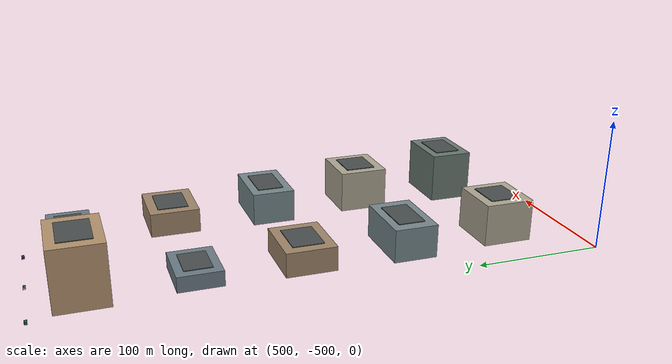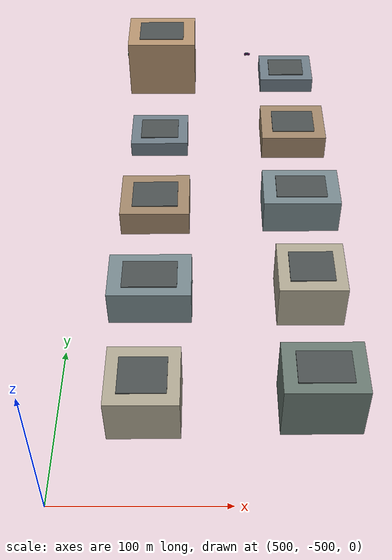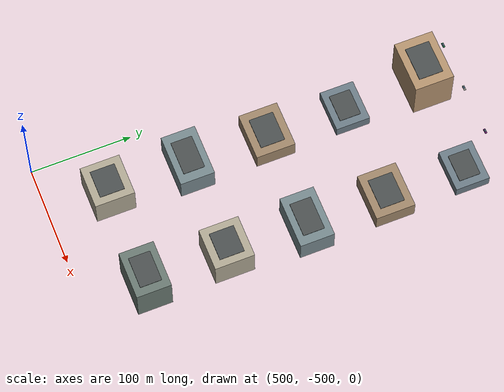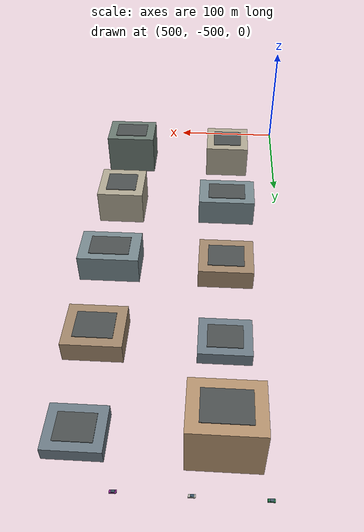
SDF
<sdf version="1.9">
 <world name="smart_city">
  <model name="chennai_block_009">
   <static>true</static>
   <pose>550 -440 0 0 0 0</pose>
   <link name="building">
    <collision name="structure">
     <pose>0 0 16.5 0 0 0</pose>
     <geometry><box><size>42 39 33</size></box></geometry>
    </collision>
    <visual name="facade">
     <pose>0 0 16.5 0 0 0</pose>
     <geometry><box><size>42 39 33</size></box></geometry>
     <material><ambient>0.68 0.65 0.57 1</ambient><diffuse>0.68 0.65 0.57 1</diffuse></material>
    </visual>
    <visual name="roof">
     <pose>0 0 33.3 0 0 0</pose>
     <geometry><box><size>27.7 24.2 0.6</size></box></geometry>
     <material><ambient>0.29 0.31 0.31 1</ambient><diffuse>0.29 0.31 0.31 1</diffuse></material>
    </visual>
   </link>
  </model>
  <model name="chennai_block_010">
   <static>true</static>
   <pose>650 -440 0 0 0 0</pose>
   <link name="building">
    <collision name="structure">
     <pose>0 0 20.0 0 0 0</pose>
     <geometry><box><size>47 34 40</size></box></geometry>
    </collision>
    <visual name="facade">
     <pose>0 0 20.0 0 0 0</pose>
     <geometry><box><size>47 34 40</size></box></geometry>
     <material><ambient>0.41 0.47 0.44 1</ambient><diffuse>0.41 0.47 0.44 1</diffuse></material>
    </visual>
    <visual name="roof">
     <pose>0 0 40.3 0 0 0</pose>
     <geometry><box><size>31.0 21.1 0.6</size></box></geometry>
     <material><ambient>0.29 0.31 0.31 1</ambient><diffuse>0.29 0.31 0.31 1</diffuse></material>
    </visual>
   </link>
  </model>
  <model name="chennai_block_020">
   <static>true</static>
   <pose>550 -360 0 0 0 0</pose>
   <link name="building">
    <collision name="structure">
     <pose>0 0 13.0 0 0 0</pose>
     <geometry><box><size>52 34 26</size></box></geometry>
    </collision>
    <visual name="facade">
     <pose>0 0 13.0 0 0 0</pose>
     <geometry><box><size>52 34 26</size></box></geometry>
     <material><ambient>0.46 0.53 0.55 1</ambient><diffuse>0.46 0.53 0.55 1</diffuse></material>
    </visual>
    <visual name="roof">
     <pose>0 0 26.3 0 0 0</pose>
     <geometry><box><size>34.3 21.1 0.6</size></box></geometry>
     <material><ambient>0.29 0.31 0.31 1</ambient><diffuse>0.29 0.31 0.31 1</diffuse></material>
    </visual>
   </link>
  </model>
  <model name="chennai_block_021">
   <static>true</static>
   <pose>650 -360 0 0 0 0</pose>
   <link name="building">
    <collision name="structure">
     <pose>0 0 16.5 0 0 0</pose>
     <geometry><box><size>42 39 33</size></box></geometry>
    </collision>
    <visual name="facade">
     <pose>0 0 16.5 0 0 0</pose>
     <geometry><box><size>42 39 33</size></box></geometry>
     <material><ambient>0.68 0.65 0.57 1</ambient><diffuse>0.68 0.65 0.57 1</diffuse></material>
    </visual>
    <visual name="roof">
     <pose>0 0 33.3 0 0 0</pose>
     <geometry><box><size>27.7 24.2 0.6</size></box></geometry>
     <material><ambient>0.29 0.31 0.31 1</ambient><diffuse>0.29 0.31 0.31 1</diffuse></material>
    </visual>
   </link>
  </model>
  <model name="chennai_block_031">
   <static>true</static>
   <pose>550 -280 0 0 0 0</pose>
   <link name="building">
    <collision name="structure">
     <pose>0 0 9.5 0 0 0</pose>
     <geometry><box><size>47 39 19</size></box></geometry>
    </collision>
    <visual name="facade">
     <pose>0 0 9.5 0 0 0</pose>
     <geometry><box><size>47 39 19</size></box></geometry>
     <material><ambient>0.62 0.52 0.41 1</ambient><diffuse>0.62 0.52 0.41 1</diffuse></material>
    </visual>
    <visual name="roof">
     <pose>0 0 19.3 0 0 0</pose>
     <geometry><box><size>31.0 24.2 0.6</size></box></geometry>
     <material><ambient>0.29 0.31 0.31 1</ambient><diffuse>0.29 0.31 0.31 1</diffuse></material>
    </visual>
   </link>
  </model>
  <model name="chennai_block_032">
   <static>true</static>
   <pose>650 -280 0 0 0 0</pose>
   <link name="building">
    <collision name="structure">
     <pose>0 0 13.0 0 0 0</pose>
     <geometry><box><size>52 34 26</size></box></geometry>
    </collision>
    <visual name="facade">
     <pose>0 0 13.0 0 0 0</pose>
     <geometry><box><size>52 34 26</size></box></geometry>
     <material><ambient>0.46 0.53 0.55 1</ambient><diffuse>0.46 0.53 0.55 1</diffuse></material>
    </visual>
    <visual name="roof">
     <pose>0 0 26.3 0 0 0</pose>
     <geometry><box><size>34.3 21.1 0.6</size></box></geometry>
     <material><ambient>0.29 0.31 0.31 1</ambient><diffuse>0.29 0.31 0.31 1</diffuse></material>
    </visual>
   </link>
  </model>
  <model name="chennai_block_042">
   <static>true</static>
   <pose>550 -200 0 0 0 0</pose>
   <link name="building">
    <collision name="structure">
     <pose>0 0 6.0 0 0 0</pose>
     <geometry><box><size>42 34 12</size></box></geometry>
    </collision>
    <visual name="facade">
     <pose>0 0 6.0 0 0 0</pose>
     <geometry><box><size>42 34 12</size></box></geometry>
     <material><ambient>0.42 0.48 0.52 1</ambient><diffuse>0.42 0.48 0.52 1</diffuse></material>
    </visual>
    <visual name="roof">
     <pose>0 0 12.3 0 0 0</pose>
     <geometry><box><size>27.7 21.1 0.6</size></box></geometry>
     <material><ambient>0.29 0.31 0.31 1</ambient><diffuse>0.29 0.31 0.31 1</diffuse></material>
    </visual>
   </link>
  </model>
  <model name="chennai_block_043">
   <static>true</static>
   <pose>650 -200 0 0 0 0</pose>
   <link name="building">
    <collision name="structure">
     <pose>0 0 9.5 0 0 0</pose>
     <geometry><box><size>47 39 19</size></box></geometry>
    </collision>
    <visual name="facade">
     <pose>0 0 9.5 0 0 0</pose>
     <geometry><box><size>47 39 19</size></box></geometry>
     <material><ambient>0.62 0.52 0.41 1</ambient><diffuse>0.62 0.52 0.41 1</diffuse></material>
    </visual>
    <visual name="roof">
     <pose>0 0 19.3 0 0 0</pose>
     <geometry><box><size>31.0 24.2 0.6</size></box></geometry>
     <material><ambient>0.29 0.31 0.31 1</ambient><diffuse>0.29 0.31 0.31 1</diffuse></material>
    </visual>
   </link>
  </model>
  <model name="chennai_block_053">
   <static>true</static>
   <pose>550 -120 0 0 0 0</pose>
   <link name="building">
    <collision name="structure">
     <pose>0 0 23.5 0 0 0</pose>
     <geometry><box><size>52 39 47</size></box></geometry>
    </collision>
    <visual name="facade">
     <pose>0 0 23.5 0 0 0</pose>
     <geometry><box><size>52 39 47</size></box></geometry>
     <material><ambient>0.70 0.57 0.43 1</ambient><diffuse>0.70 0.57 0.43 1</diffuse></material>
    </visual>
    <visual name="roof">
     <pose>0 0 47.3 0 0 0</pose>
     <geometry><box><size>34.3 24.2 0.6</size></box></geometry>
     <material><ambient>0.29 0.31 0.31 1</ambient><diffuse>0.29 0.31 0.31 1</diffuse></material>
    </visual>
   </link>
  </model>
  <model name="chennai_block_054">
   <static>true</static>
   <pose>650 -120 0 0 0 0</pose>
   <link name="building">
    <collision name="structure">
     <pose>0 0 6.0 0 0 0</pose>
     <geometry><box><size>42 34 12</size></box></geometry>
    </collision>
    <visual name="facade">
     <pose>0 0 6.0 0 0 0</pose>
     <geometry><box><size>42 34 12</size></box></geometry>
     <material><ambient>0.42 0.48 0.52 1</ambient><diffuse>0.42 0.48 0.52 1</diffuse></material>
    </visual>
    <visual name="roof">
     <pose>0 0 12.3 0 0 0</pose>
     <geometry><box><size>27.7 21.1 0.6</size></box></geometry>
     <material><ambient>0.29 0.31 0.31 1</ambient><diffuse>0.29 0.31 0.31 1</diffuse></material>
    </visual>
   </link>
  </model>
  <model name="downtown_car_04">
   <static>true</static>
   <pose>520 -84 0 0 0 0</pose>
   <link name="car">
    <visual name="body">
     <pose>0 0 0.72 0 0 0</pose>
     <geometry><box><size>4.8 2.0 1.1</size></box></geometry>
     <material><ambient>0.12 0.47 0.28 1</ambient><diffuse>0.12 0.47 0.28 1</diffuse></material>
    </visual>
    <visual name="cabin">
     <pose>-0.18 0 1.38 0 0 0</pose>
     <geometry><box><size>2.55 1.72 0.72</size></box></geometry>
     <material><ambient>0.25 0.34 0.40 1</ambient><diffuse>0.25 0.34 0.40 1</diffuse></material>
    </visual>
    <visual name="wheel_fl">
     <pose>1.45 0.96 0.36 1.5708 0 0</pose>
     <geometry><cylinder><radius>0.35</radius><length>0.18</length></cylinder></geometry>
     <material><ambient>0.04 0.04 0.045 1</ambient><diffuse>0.04 0.04 0.045 1</diffuse></material>
    </visual>
    <visual name="wheel_fr">
     <pose>1.45 -0.96 0.36 1.5708 0 0</pose>
     <geometry><cylinder><radius>0.35</radius><length>0.18</length></cylinder></geometry>
     <material><ambient>0.04 0.04 0.045 1</ambient><diffuse>0.04 0.04 0.045 1</diffuse></material>
    </visual>
    <visual name="wheel_rl">
     <pose>-1.45 0.96 0.36 1.5708 0 0</pose>
     <geometry><cylinder><radius>0.35</radius><length>0.18</length></cylinder></geometry>
     <material><ambient>0.04 0.04 0.045 1</ambient><diffuse>0.04 0.04 0.045 1</diffuse></material>
    </visual>
    <visual name="wheel_rr">
     <pose>-1.45 -0.96 0.36 1.5708 0 0</pose>
     <geometry><cylinder><radius>0.35</radius><length>0.18</length></cylinder></geometry>
     <material><ambient>0.04 0.04 0.045 1</ambient><diffuse>0.04 0.04 0.045 1</diffuse></material>
    </visual>
   </link>
  </model>
  <model name="downtown_car_05">
   <static>true</static>
   <pose>570 -84 0 0 0 0</pose>
   <link name="car">
    <visual name="body">
     <pose>0 0 0.72 0 0 0</pose>
     <geometry><box><size>4.8 2.0 1.1</size></box></geometry>
     <material><ambient>0.72 0.72 0.68 1</ambient><diffuse>0.72 0.72 0.68 1</diffuse></material>
    </visual>
    <visual name="cabin">
     <pose>-0.18 0 1.38 0 0 0</pose>
     <geometry><box><size>2.55 1.72 0.72</size></box></geometry>
     <material><ambient>0.22 0.32 0.39 1</ambient><diffuse>0.22 0.32 0.39 1</diffuse></material>
    </visual>
    <visual name="wheel_fl">
     <pose>1.45 0.96 0.36 1.5708 0 0</pose>
     <geometry><cylinder><radius>0.35</radius><length>0.18</length></cylinder></geometry>
     <material><ambient>0.04 0.04 0.045 1</ambient><diffuse>0.04 0.04 0.045 1</diffuse></material>
    </visual>
    <visual name="wheel_fr">
     <pose>1.45 -0.96 0.36 1.5708 0 0</pose>
     <geometry><cylinder><radius>0.35</radius><length>0.18</length></cylinder></geometry>
     <material><ambient>0.04 0.04 0.045 1</ambient><diffuse>0.04 0.04 0.045 1</diffuse></material>
    </visual>
    <visual name="wheel_rl">
     <pose>-1.45 0.96 0.36 1.5708 0 0</pose>
     <geometry><cylinder><radius>0.35</radius><length>0.18</length></cylinder></geometry>
     <material><ambient>0.04 0.04 0.045 1</ambient><diffuse>0.04 0.04 0.045 1</diffuse></material>
    </visual>
    <visual name="wheel_rr">
     <pose>-1.45 -0.96 0.36 1.5708 0 0</pose>
     <geometry><cylinder><radius>0.35</radius><length>0.18</length></cylinder></geometry>
     <material><ambient>0.04 0.04 0.045 1</ambient><diffuse>0.04 0.04 0.045 1</diffuse></material>
    </visual>
   </link>
  </model>
  <model name="downtown_car_06">
   <static>true</static>
   <pose>620 -84 0 0 0 0</pose>
   <link name="car">
    <visual name="body">
     <pose>0 0 0.72 0 0 0</pose>
     <geometry><box><size>4.8 2.0 1.1</size></box></geometry>
     <material><ambient>0.52 0.14 0.52 1</ambient><diffuse>0.52 0.14 0.52 1</diffuse></material>
    </visual>
    <visual name="cabin">
     <pose>-0.18 0 1.38 0 0 0</pose>
     <geometry><box><size>2.55 1.72 0.72</size></box></geometry>
     <material><ambient>0.20 0.28 0.34 1</ambient><diffuse>0.20 0.28 0.34 1</diffuse></material>
    </visual>
    <visual name="wheel_fl">
     <pose>1.45 0.96 0.36 1.5708 0 0</pose>
     <geometry><cylinder><radius>0.35</radius><length>0.18</length></cylinder></geometry>
     <material><ambient>0.04 0.04 0.045 1</ambient><diffuse>0.04 0.04 0.045 1</diffuse></material>
    </visual>
    <visual name="wheel_fr">
     <pose>1.45 -0.96 0.36 1.5708 0 0</pose>
     <geometry><cylinder><radius>0.35</radius><length>0.18</length></cylinder></geometry>
     <material><ambient>0.04 0.04 0.045 1</ambient><diffuse>0.04 0.04 0.045 1</diffuse></material>
    </visual>
    <visual name="wheel_rl">
     <pose>-1.45 0.96 0.36 1.5708 0 0</pose>
     <geometry><cylinder><radius>0.35</radius><length>0.18</length></cylinder></geometry>
     <material><ambient>0.04 0.04 0.045 1</ambient><diffuse>0.04 0.04 0.045 1</diffuse></material>
    </visual>
    <visual name="wheel_rr">
     <pose>-1.45 -0.96 0.36 1.5708 0 0</pose>
     <geometry><cylinder><radius>0.35</radius><length>0.18</length></cylinder></geometry>
     <material><ambient>0.04 0.04 0.045 1</ambient><diffuse>0.04 0.04 0.045 1</diffuse></material>
    </visual>
   </link>
  </model>
 </world>
</sdf>
